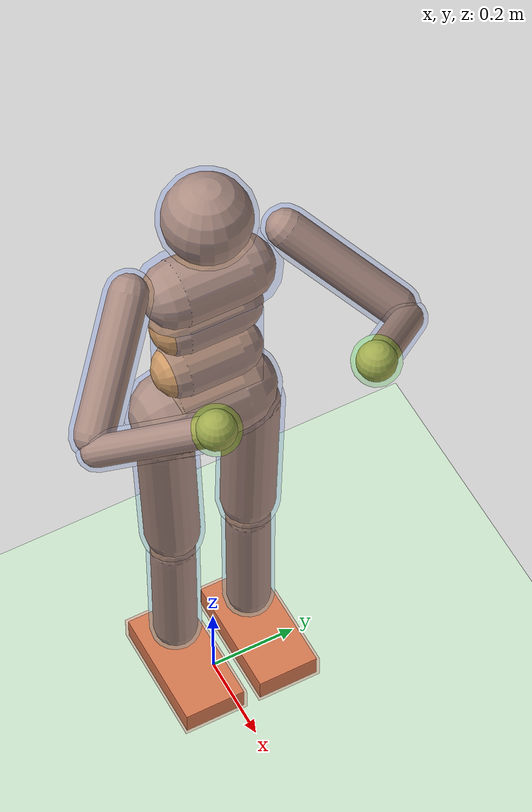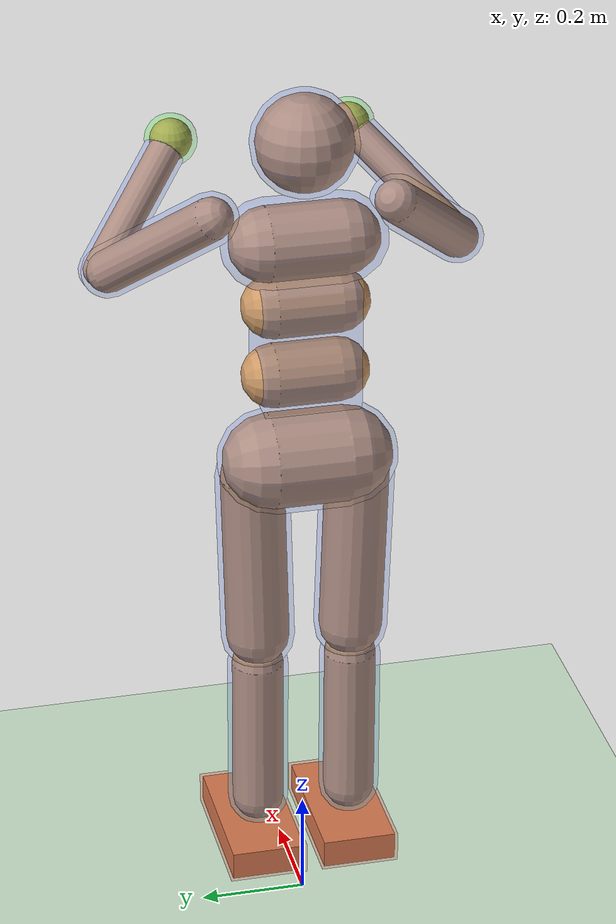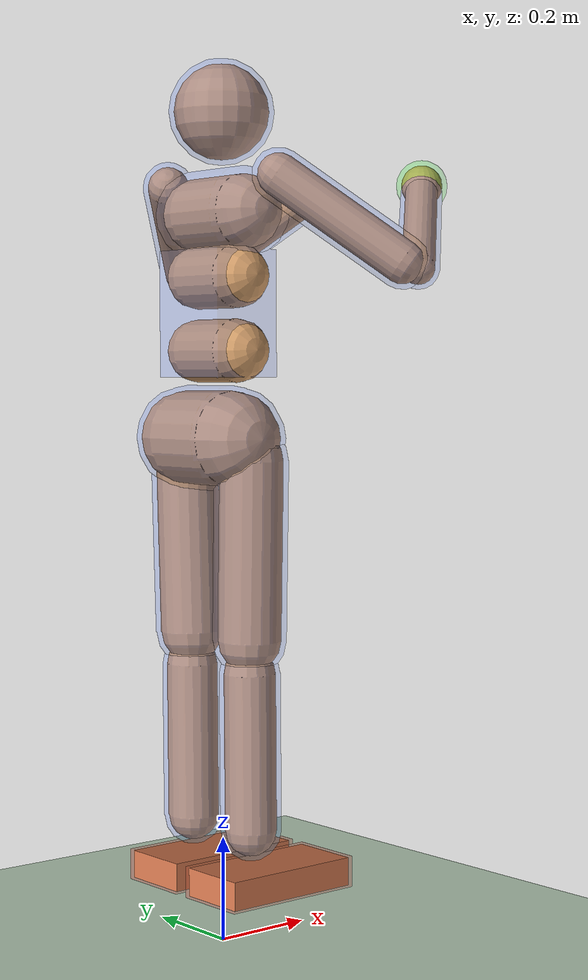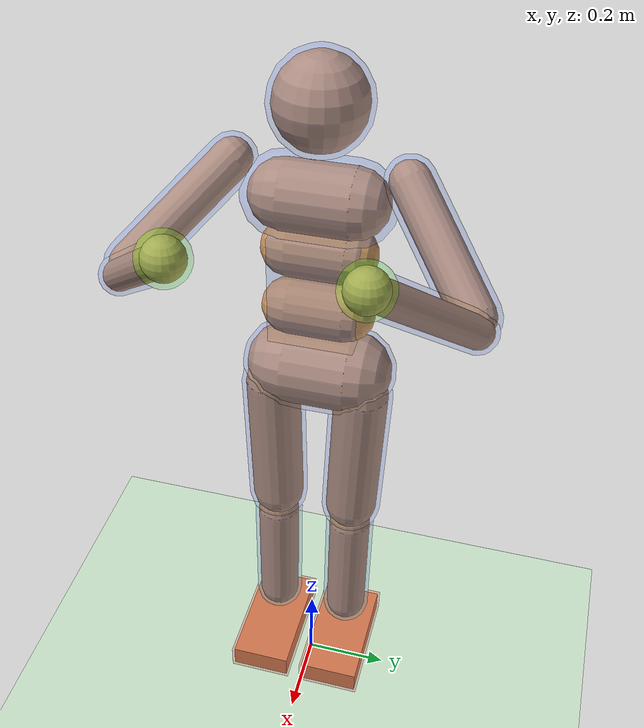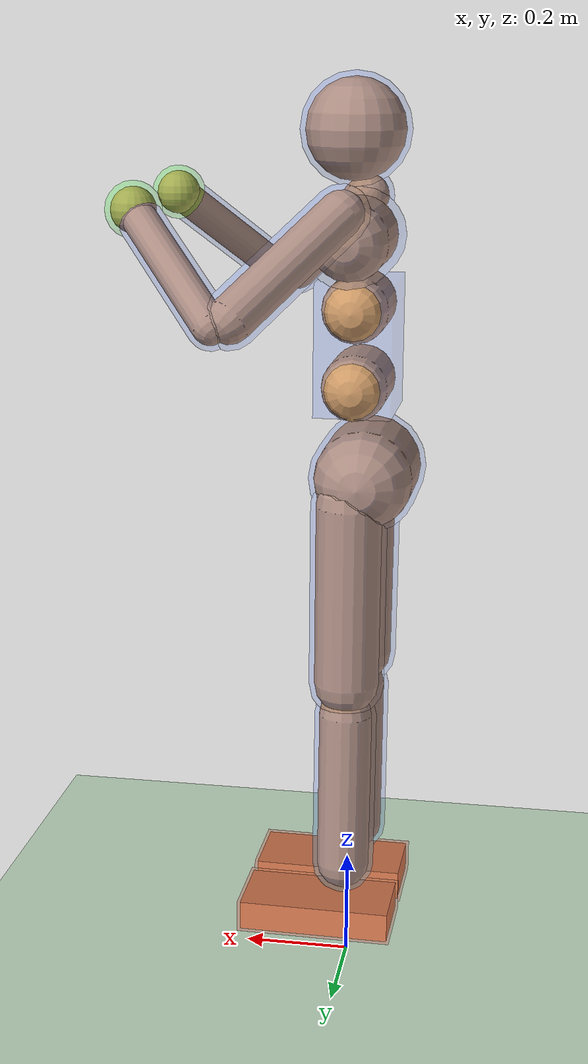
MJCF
<mujoco model="decadic_humanoid">
  <compiler angle="degree" inertiafromgeom="true"/>
  <default>
    <joint armature="1" damping="1" limited="true"/>
    <geom conaffinity="1" condim="3" contype="1" friction="1 .1 .1" margin="0.001" material="geom" rgba="0.8 0.6 0.4 1"/>
    <motor ctrllimited="true" ctrlrange="-.4 .4"/>
  </default>
  <!-- implicitfast integrates stiff joint springs (the joint-brace guidance
       system) stably; explicit stiff PD under RK4 at this timestep diverges. -->
  <option integrator="implicitfast" iterations="50" solver="PGS" timestep="0.003"/>
  <visual>
    <map fogend="5" fogstart="3"/>
  </visual>
  <asset>
    <texture builtin="gradient" height="100" rgb1=".4 .5 .6" rgb2="0 0 0" type="skybox" width="100"/>
    <texture builtin="flat" height="1278" mark="cross" markrgb="1 1 1" name="texgeom" random="0.01" rgb1="0.8 0.6 0.4" rgb2="0.8 0.6 0.4" type="cube" width="127"/>
    <texture builtin="checker" height="100" name="texplane" rgb1="0 0 0" rgb2="0.8 0.8 0.8" type="2d" width="100"/>
    <material name="MatPlane" reflectance="0.5" shininess="1" specular="1" texrepeat="60 60" texture="texplane"/>
    <material name="geom" texture="texgeom" texuniform="true"/>
  </asset>
  <worldbody>
    <light cutoff="100" diffuse="1 1 1" dir="-0 0 -1.3" directional="true" exponent="1" pos="0 0 1.3" specular=".1 .1 .1"/>
    <geom condim="6" friction="1 .5 .5" material="MatPlane" name="floor" pos="0 0 0" rgba="0.8 0.9 0.8 1" size="20 20 0.125" type="plane"/>

    <body name="torso" pos="0 0 1.4">
      <camera name="track" mode="trackcom" pos="0 -4 0" xyaxes="1 0 0 0 0 1"/>
      <camera name="front" mode="trackcom" pos="0 4 0" xyaxes="-1 0 0 0 0 1"/>
      <camera name="side" mode="trackcom" pos="-4 0 0" xyaxes="0 -1 0 0 0 1"/>
      <camera name="top" mode="trackcom" pos="0 0 4" xyaxes="1 0 0 0 1 0"/>
      <joint armature="0" damping="0" limited="false" name="root" pos="0 0 0" stiffness="0" type="free"/>
      <geom fromto="0 -.07 0 0 .07 0" name="torso1" size="0.07" type="capsule"/>
      <site name="torso_site" type="capsule" fromto="0 -.07 0 0 .07 0" size="0.085" rgba="0.2 0.4 1 0.08"/>
      <body name="head" pos="0 0 .19">
        <geom name="head" pos="0 0 0" size=".09" type="sphere" user="258"/>
        <site name="head_site" type="sphere" pos="0 0 0" size="0.1" rgba="0.2 0.4 1 0.08"/>
        <camera name="egocentric" pos="0.09 0 0" xyaxes="0 -1 0 0 0 1" fovy="80"/>
      </body>
      <geom fromto="-.01 -.06 -.12 -.01 .06 -.12" name="uwaist" size="0.06" type="capsule"/>
      <body name="lwaist" pos="-.01 0 -0.260" quat="1.000 0 -0.002 0">
        <geom fromto="0 -.06 0 0 .06 0" name="lwaist" size="0.06" type="capsule"/>
        <site name="waist_site" type="box" pos="0 0 0.07" size="0.07 0.09 0.12" rgba="0.2 0.4 1 0.08"/>
        <joint armature="0.02" axis="0 0 1" damping="5" name="abdomen_z" pos="0 0 0.065" range="-45 45" stiffness="20" type="hinge"/>
        <joint armature="0.02" axis="0 1 0" damping="5" name="abdomen_y" pos="0 0 0.065" range="-75 30" stiffness="10" type="hinge"/>
        <body name="pelvis" pos="0 0 -0.165" quat="1.000 0 -0.002 0">
          <joint armature="0.02" axis="1 0 0" damping="5" name="abdomen_x" pos="0 0 0.1" range="-35 35" stiffness="10" type="hinge"/>
          <geom fromto="-.02 -.07 0 -.02 .07 0" name="butt" size="0.09" type="capsule"/>
          <site name="butt_site" type="capsule" fromto="-.02 -.07 0 -.02 .07 0" size="0.1" rgba="0.2 0.4 1 0.08"/>
          <body name="right_thigh" pos="0 -0.1 -0.04">
            <joint armature="0.01" axis="1 0 0" damping="5" name="right_hip_x" pos="0 0 0" range="-25 5" stiffness="10" type="hinge"/>
            <joint armature="0.01" axis="0 0 1" damping="5" name="right_hip_z" pos="0 0 0" range="-60 35" stiffness="10" type="hinge"/>
            <joint armature="0.0080" axis="0 1 0" damping="5" name="right_hip_y" pos="0 0 0" range="-110 20" stiffness="20" type="hinge"/>
            <geom fromto="0 0 0 0 0.01 -.34" name="right_thigh1" size="0.06" type="capsule"/>
            <site name="right_thigh_site" type="capsule" fromto="0 0 0 0 0.01 -.34" size="0.07" rgba="0.2 0.4 1 0.08"/>
            <body name="right_shin" pos="0 0.01 -0.403">
              <joint armature="0.0060" axis="0 -1 0" name="right_knee" pos="0 0 .02" range="-160 -2" type="hinge"/>
              <geom fromto="0 0 0 0 0 -.3" name="right_shin1" size="0.049" type="capsule"/>
              <site name="right_shin_site" type="capsule" fromto="0 0 0 0 0 -.3" size="0.058" rgba="0.2 0.4 1 0.08"/>
              <body name="right_foot" pos="0 0 -0.45">
                <joint armature="0.01" axis="0 1 0" damping="5" name="right_ankle_y" pos="0 0 0.1" range="-50 50" stiffness="4" type="hinge"/>
                <joint armature="0.01" axis="1 0 0" damping="5" name="right_ankle_x" pos="0 0 0.1" range="-30 30" stiffness="4" type="hinge"/>
                <geom name="right_foot" pos="0.045 0 0.052" size="0.14 0.07 0.027" type="box" condim="3" friction="1.0 0.05 0.05" user="0"/>
                <site name="right_foot_site" pos="0.045 0 0.052" size="0.145 0.075 0.03" type="box" rgba="1 0 0 0.2"/>
              </body>
            </body>
          </body>
          <body name="left_thigh" pos="0 0.1 -0.04">
            <joint armature="0.01" axis="-1 0 0" damping="5" name="left_hip_x" pos="0 0 0" range="-25 5" stiffness="10" type="hinge"/>
            <joint armature="0.01" axis="0 0 -1" damping="5" name="left_hip_z" pos="0 0 0" range="-60 35" stiffness="10" type="hinge"/>
            <joint armature="0.01" axis="0 1 0" damping="5" name="left_hip_y" pos="0 0 0" range="-110 20" stiffness="20" type="hinge"/>
            <geom fromto="0 0 0 0 -0.01 -.34" name="left_thigh1" size="0.06" type="capsule"/>
            <site name="left_thigh_site" type="capsule" fromto="0 0 0 0 -0.01 -.34" size="0.07" rgba="0.2 0.4 1 0.08"/>
            <body name="left_shin" pos="0 -0.01 -0.403">
              <joint armature="0.0060" axis="0 -1 0" name="left_knee" pos="0 0 .02" range="-160 -2" stiffness="1" type="hinge"/>
              <geom fromto="0 0 0 0 0 -.3" name="left_shin1" size="0.049" type="capsule"/>
              <site name="left_shin_site" type="capsule" fromto="0 0 0 0 0 -.3" size="0.058" rgba="0.2 0.4 1 0.08"/>
              <body name="left_foot" pos="0 0 -0.45">
                <joint armature="0.01" axis="0 1 0" damping="5" name="left_ankle_y" pos="0 0 0.1" range="-50 50" stiffness="4" type="hinge"/>
                <joint armature="0.01" axis="1 0 0" damping="5" name="left_ankle_x" pos="0 0 0.1" range="-30 30" stiffness="4" type="hinge"/>
                <geom name="left_foot" pos="0.045 0 0.052" size="0.14 0.07 0.027" type="box" condim="3" friction="1.0 0.05 0.05" user="0"/>
                <site name="left_foot_site" pos="0.045 0 0.052" size="0.145 0.075 0.03" type="box" rgba="1 0 0 0.2"/>
              </body>
            </body>
          </body>
        </body>
      </body>
      <body name="right_upper_arm" pos="0 -0.17 0.06">
        <joint armature="0.0068" axis="2 1 1" name="right_shoulder1" pos="0 0 0" range="-85 60" stiffness="1" type="hinge"/>
        <joint armature="0.0051" axis="0 -1 1" name="right_shoulder2" pos="0 0 0" range="-85 60" stiffness="1" type="hinge"/>
        <geom fromto="0 0 0 .16 -.16 -.16" name="right_uarm1" size="0.04 0.16" type="capsule"/>
        <site name="right_uarm_site" type="capsule" fromto="0 0 0 .16 -.16 -.16" size="0.05" rgba="0.2 0.4 1 0.08"/>
        <body name="right_lower_arm" pos=".18 -.18 -.18">
          <joint armature="0.0028" axis="0 -1 1" name="right_elbow" pos="0 0 0" range="-90 50" stiffness="0" type="hinge"/>
          <geom fromto="0.01 0.01 0.01 .17 .17 .17" name="right_larm" size="0.031" type="capsule" condim="3" friction="1.0 0.05 0.05"/>
          <site name="right_larm_site" type="capsule" fromto="0.01 0.01 0.01 .17 .17 .17" size="0.04" rgba="0.2 0.4 1 0.08"/>
          <geom name="right_hand" pos=".18 .18 .18" size="0.04" type="sphere" condim="3" friction="1.0 0.05 0.05"/>
          <site name="right_hand_site" pos=".18 .18 .18" size="0.05" type="sphere" rgba="0 1 0 0.2"/>
        </body>
      </body>
      <body name="left_upper_arm" pos="0 0.17 0.06">
        <joint armature="0.0068" axis="2 -1 1" name="left_shoulder1" pos="0 0 0" range="-60 85" stiffness="1" type="hinge"/>
        <joint armature="0.0051" axis="0 1 1" name="left_shoulder2" pos="0 0 0" range="-60 85" stiffness="1" type="hinge"/>
        <geom fromto="0 0 0 .16 .16 -.16" name="left_uarm1" size="0.04 0.16" type="capsule"/>
        <site name="left_uarm_site" type="capsule" fromto="0 0 0 .16 .16 -.16" size="0.05" rgba="0.2 0.4 1 0.08"/>
        <body name="left_lower_arm" pos=".18 .18 -.18">
          <joint armature="0.0028" axis="0 -1 -1" name="left_elbow" pos="0 0 0" range="-90 50" stiffness="0" type="hinge"/>
          <geom fromto="0.01 -0.01 0.01 .17 -.17 .17" name="left_larm" size="0.031" type="capsule" condim="3" friction="1.0 0.05 0.05"/>
          <site name="left_larm_site" type="capsule" fromto="0.01 -0.01 0.01 .17 -.17 .17" size="0.04" rgba="0.2 0.4 1 0.08"/>
          <geom name="left_hand" pos=".18 -.18 .18" size="0.04" type="sphere" condim="3" friction="1.0 0.05 0.05"/>
          <site name="left_hand_site" pos=".18 -.18 .18" size="0.05" type="sphere" rgba="0 1 0 0.2"/>
        </body>
      </body>
    </body>

    <!-- Scene props are spliced in here by scripts/mujoco_decadic_adapter.py (--scene) -->
  </worldbody>

  <tendon>
    <fixed name="left_hipknee">
      <joint coef="-1" joint="left_hip_y"/>
      <joint coef="1" joint="left_knee"/>
    </fixed>
    <fixed name="right_hipknee">
      <joint coef="-1" joint="right_hip_y"/>
      <joint coef="1" joint="right_knee"/>
    </fixed>
  </tendon>

  <actuator>
    <motor gear="100" joint="abdomen_y" name="abdomen_y"/>
    <motor gear="100" joint="abdomen_z" name="abdomen_z"/>
    <motor gear="100" joint="abdomen_x" name="abdomen_x"/>
    <motor gear="100" joint="right_hip_x" name="right_hip_x"/>
    <motor gear="100" joint="right_hip_z" name="right_hip_z"/>
    <motor gear="300" joint="right_hip_y" name="right_hip_y"/>
    <motor gear="200" joint="right_knee" name="right_knee"/>
    <motor gear="180" joint="right_ankle_y" name="right_ankle_y"/>
    <motor gear="80" joint="right_ankle_x" name="right_ankle_x"/>
    <motor gear="100" joint="left_hip_x" name="left_hip_x"/>
    <motor gear="100" joint="left_hip_z" name="left_hip_z"/>
    <motor gear="300" joint="left_hip_y" name="left_hip_y"/>
    <motor gear="200" joint="left_knee" name="left_knee"/>
    <motor gear="180" joint="left_ankle_y" name="left_ankle_y"/>
    <motor gear="80" joint="left_ankle_x" name="left_ankle_x"/>
    <motor gear="60" joint="right_shoulder1" name="right_shoulder1"/>
    <motor gear="60" joint="right_shoulder2" name="right_shoulder2"/>
    <motor gear="60" joint="right_elbow" name="right_elbow"/>
    <motor gear="60" joint="left_shoulder1" name="left_shoulder1"/>
    <motor gear="60" joint="left_shoulder2" name="left_shoulder2"/>
    <motor gear="60" joint="left_elbow" name="left_elbow"/>
  </actuator>

  <sensor>
    <touch name="touch_right_foot" site="right_foot_site"/>
    <touch name="touch_left_foot" site="left_foot_site"/>
    <touch name="touch_right_hand" site="right_hand_site"/>
    <touch name="touch_left_hand" site="left_hand_site"/>
    <touch name="touch_torso" site="torso_site"/>
    <touch name="touch_head" site="head_site"/>
    <touch name="touch_waist" site="waist_site"/>
    <touch name="touch_butt" site="butt_site"/>
    <touch name="touch_right_thigh" site="right_thigh_site"/>
    <touch name="touch_left_thigh" site="left_thigh_site"/>
    <touch name="touch_right_shin" site="right_shin_site"/>
    <touch name="touch_left_shin" site="left_shin_site"/>
    <touch name="touch_right_uarm" site="right_uarm_site"/>
    <touch name="touch_left_uarm" site="left_uarm_site"/>
    <touch name="touch_right_larm" site="right_larm_site"/>
    <touch name="touch_left_larm" site="left_larm_site"/>
  </sensor>
</mujoco>
